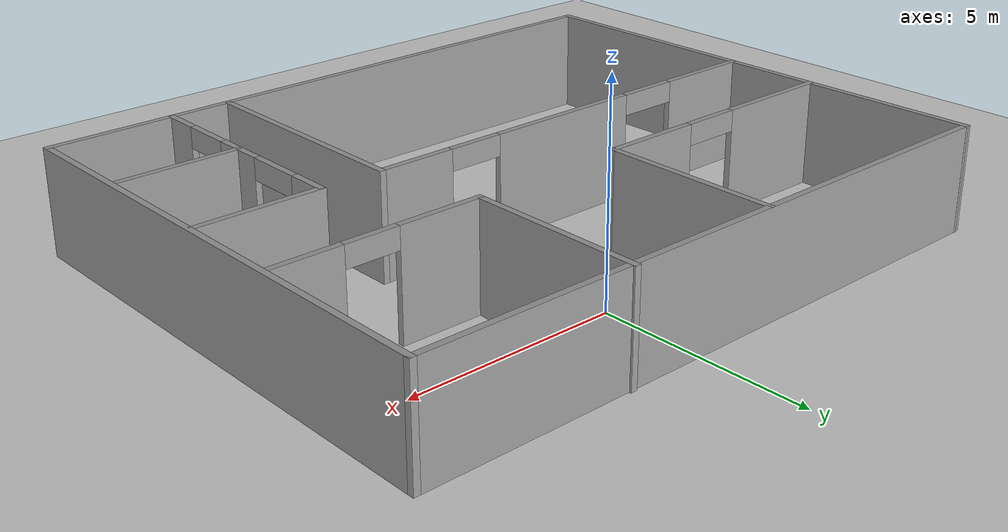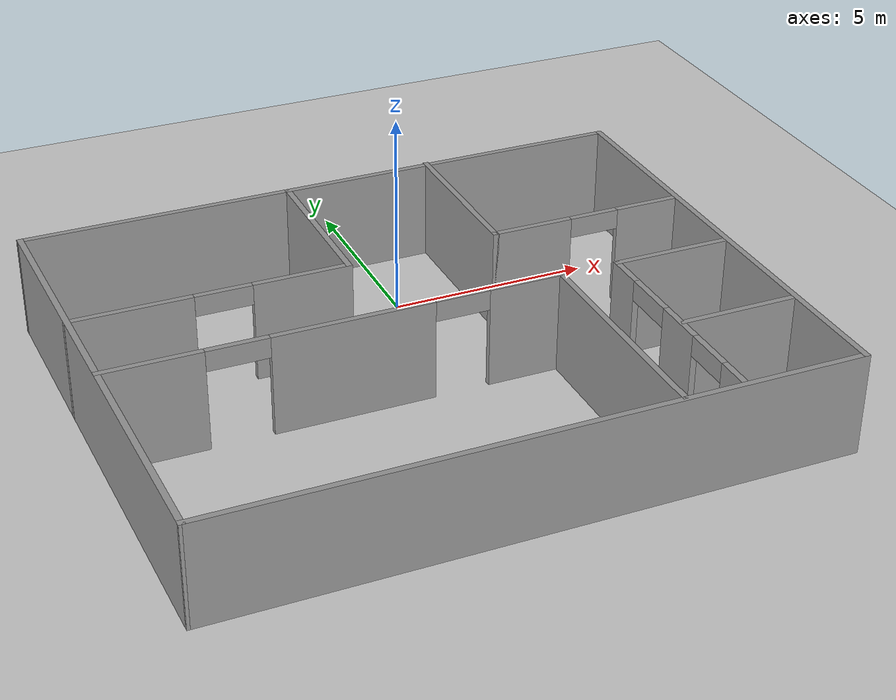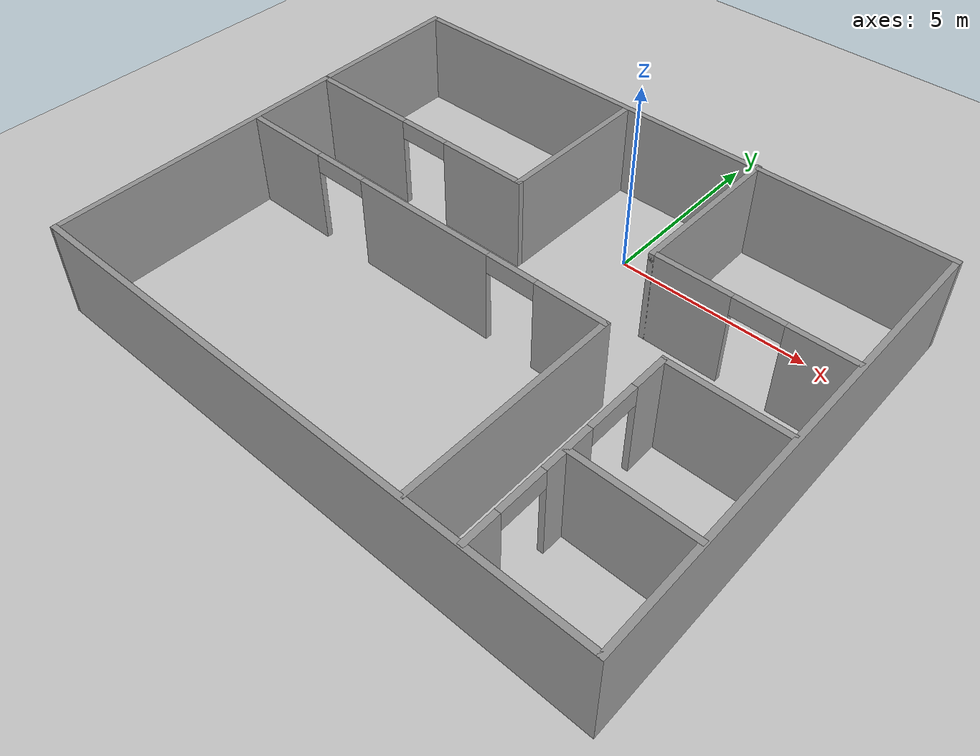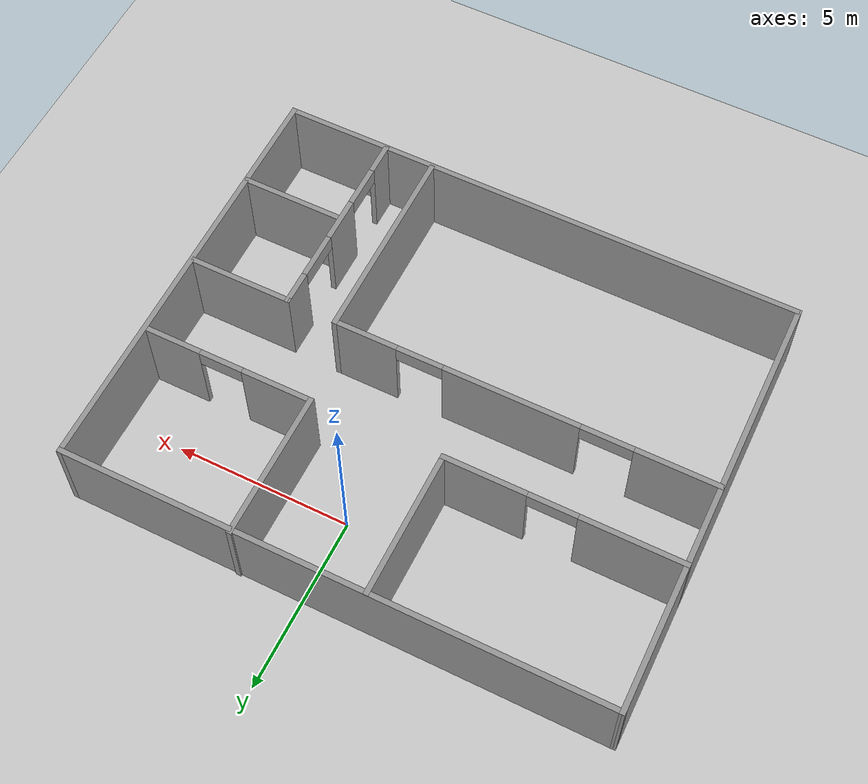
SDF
<sdf version="1.7">
 <world name="default">
  <light name="sun" type="directional">
   <cast_shadows>0</cast_shadows>
   <pose>0 0 10 0 -0 0</pose>
   <diffuse>0.8 0.8 0.8 1</diffuse>
   <specular>0.2 0.2 0.2 1</specular>
   <attenuation>
    <range>1000</range>
    <constant>0.9</constant>
    <linear>0.01</linear>
    <quadratic>0.001</quadratic>
   </attenuation>
   <direction>-0.5 0.1 -0.9</direction>
   <spot><inner_angle>0</inner_angle><outer_angle>0</outer_angle><falloff>0</falloff></spot>
  </light>
  <model name="ground_plane">
   <static>1</static>
   <link name="link">
    <collision name="collision">
     <geometry><plane><normal>0 0 1</normal><size>100 100</size></plane></geometry>
     <surface><friction><ode><mu>100</mu><mu2>50</mu2></ode></friction></surface>
    </collision>
    <visual name="visual">
     <cast_shadows>0</cast_shadows>
     <geometry><plane><normal>0 0 1</normal><size>100 100</size></plane></geometry>
     <material>
      <script><uri>file://media/materials/scripts/gazebo.material</uri><name>Gazebo/Grey</name></script>
     </material>
    </visual>
   </link>
  </model>
  <gravity>0 0 -9.8</gravity>
  <magnetic_field>6e-06 2.3e-05 -4.2e-05</magnetic_field>
  <atmosphere type="adiabatic"/>
  <physics type="ode">
   <max_step_size>0.001</max_step_size>
   <real_time_factor>1</real_time_factor>
   <real_time_update_rate>1000</real_time_update_rate>
  </physics>
  <scene><ambient>0.4 0.4 0.4 1</ambient><background>0.7 0.7 0.7 1</background><shadows>0</shadows></scene>
  <spherical_coordinates>
   <surface_model>EARTH_WGS84</surface_model>
   <latitude_deg>0</latitude_deg>
   <longitude_deg>0</longitude_deg>
   <elevation>0</elevation>
   <heading_deg>0</heading_deg>
  </spherical_coordinates>
  <model name="dtan_mems">
   <pose>-0.93596 -3.65632 0 0 -0 0</pose>
   <link name="Wall_10">
    <collision name="Wall_10_Collision">
     <geometry><box><size>12.2526 0.15 2.5</size></box></geometry>
     <pose>0 0 1.25 0 -0 0</pose>
    </collision>
    <visual name="Wall_10_Visual">
     <pose>0 0 1.25 0 -0 0</pose>
     <geometry><box><size>12.2526 0.15 2.5</size></box></geometry>
     <material>
      <script><uri>file://media/materials/scripts/gazebo.material</uri><name>Gazebo/Grey</name></script>
      <ambient>1 1 1 1</ambient>
     </material>
     <meta><layer>0</layer></meta>
    </visual>
    <pose>-7.54923 -0.022286 0 0 -0 -1.55014</pose>
   </link>
   <link name="Wall_12">
    <collision name="Wall_12_Collision">
     <geometry><box><size>4.25 0.15 2.5</size></box></geometry>
     <pose>0 0 1.25 0 -0 0</pose>
    </collision>
    <visual name="Wall_12_Visual">
     <pose>0 0 1.25 0 -0 0</pose>
     <geometry><box><size>4.25 0.15 2.5</size></box></geometry>
     <material>
      <script><uri>file://media/materials/scripts/gazebo.material</uri><name>Gazebo/Grey</name></script>
      <ambient>1 1 1 1</ambient>
     </material>
     <meta><layer>0</layer></meta>
    </visual>
    <pose>2.75418 4.02382 0 0 -0 -1.5708</pose>
   </link>
   <link name="Wall_15">
    <collision name="Wall_15_Collision">
     <geometry><box><size>4.25 0.15 2.5</size></box></geometry>
     <pose>0 0 1.25 0 -0 0</pose>
    </collision>
    <visual name="Wall_15_Visual">
     <pose>0 0 1.25 0 -0 0</pose>
     <geometry><box><size>4.25 0.15 2.5</size></box></geometry>
     <material>
      <script><uri>file://media/materials/scripts/gazebo.material</uri><name>Gazebo/Grey</name></script>
      <ambient>1 1 1 1</ambient>
     </material>
     <meta><layer>0</layer></meta>
    </visual>
    <pose>-0.990993 3.97032 0 0 -0 -1.5708</pose>
   </link>
   <link name="Wall_16">
    <pose>-4.29099 1.92032 0 0 -0 3.14159</pose>
    <visual name="Wall_16_Visual_0">
     <pose>-2.17293 0 1.25 0 -0 0</pose>
     <geometry><box><size>2.40415 0.15 2.5</size></box></geometry>
     <material>
      <script><uri>file://media/materials/scripts/gazebo.material</uri><name>Gazebo/Grey</name></script>
      <ambient>1 1 1 1</ambient>
     </material>
     <meta><layer>0</layer></meta>
    </visual>
    <collision name="Wall_16_Collision_0">
     <geometry><box><size>2.40415 0.15 2.5</size></box></geometry>
     <pose>-2.17293 0 1.25 0 -0 0</pose>
    </collision>
    <visual name="Wall_16_Visual_1">
     <pose>1.89344 0 1.25 0 -0 0</pose>
     <geometry><box><size>2.96313 0.15 2.5</size></box></geometry>
     <material>
      <script><uri>file://media/materials/scripts/gazebo.material</uri><name>Gazebo/Grey</name></script>
      <ambient>1 1 1 1</ambient>
     </material>
     <meta><layer>0</layer></meta>
    </visual>
    <collision name="Wall_16_Collision_1">
     <geometry><box><size>2.96313 0.15 2.5</size></box></geometry>
     <pose>1.89344 0 1.25 0 -0 0</pose>
    </collision>
    <visual name="Wall_16_Visual_2">
     <pose>-0.27949 0 2.25 0 -0 0</pose>
     <geometry><box><size>1.38273 0.15 0.5</size></box></geometry>
     <material>
      <script><uri>file://media/materials/scripts/gazebo.material</uri><name>Gazebo/Grey</name></script>
      <ambient>1 1 1 1</ambient>
     </material>
     <meta><layer>0</layer></meta>
    </visual>
    <collision name="Wall_16_Collision_2">
     <geometry><box><size>1.38273 0.15 0.5</size></box></geometry>
     <pose>-0.27949 0 2.25 0 -0 0</pose>
    </collision>
   </link>
   <link name="Wall_18">
    <pose>5.17918 1.97382 0 0 -0 0</pose>
    <visual name="Wall_18_Visual_0">
     <pose>-1.46527 0 1.25 0 -0 0</pose>
     <geometry><box><size>2.06946 0.15 2.5</size></box></geometry>
     <material>
      <script><uri>file://media/materials/scripts/gazebo.material</uri><name>Gazebo/Grey</name></script>
      <ambient>1 1 1 1</ambient>
     </material>
     <meta><layer>0</layer></meta>
    </visual>
    <collision name="Wall_18_Collision_0">
     <geometry><box><size>2.06946 0.15 2.5</size></box></geometry>
     <pose>-1.46527 0 1.25 0 -0 0</pose>
    </collision>
    <visual name="Wall_18_Visual_1">
     <pose>1.65963 0 1.25 0 -0 0</pose>
     <geometry><box><size>1.68074 0.15 2.5</size></box></geometry>
     <material>
      <script><uri>file://media/materials/scripts/gazebo.material</uri><name>Gazebo/Grey</name></script>
      <ambient>1 1 1 1</ambient>
     </material>
     <meta><layer>0</layer></meta>
    </visual>
    <collision name="Wall_18_Collision_1">
     <geometry><box><size>1.68074 0.15 2.5</size></box></geometry>
     <pose>1.65963 0 1.25 0 -0 0</pose>
    </collision>
    <visual name="Wall_18_Visual_2">
     <pose>0.194358 0 2.25 0 -0 0</pose>
     <geometry><box><size>1.2498 0.15 0.5</size></box></geometry>
     <material>
      <script><uri>file://media/materials/scripts/gazebo.material</uri><name>Gazebo/Grey</name></script>
      <ambient>1 1 1 1</ambient>
     </material>
     <meta><layer>0</layer></meta>
    </visual>
    <collision name="Wall_18_Collision_2">
     <geometry><box><size>1.2498 0.15 0.5</size></box></geometry>
     <pose>0.194358 0 2.25 0 -0 0</pose>
    </collision>
   </link>
   <link name="Wall_20">
    <pose>-2.11163 -0.401133 0 0 -0 0</pose>
    <visual name="Wall_20_Visual_0">
     <pose>-4.28921 0 1.25 0 -0 0</pose>
     <geometry><box><size>2.42157 0.15 2.5</size></box></geometry>
     <material>
      <script><uri>file://media/materials/scripts/gazebo.material</uri><name>Gazebo/Grey</name></script>
      <ambient>1 1 1 1</ambient>
     </material>
     <meta><layer>0</layer></meta>
    </visual>
    <collision name="Wall_20_Collision_0">
     <geometry><box><size>2.42157 0.15 2.5</size></box></geometry>
     <pose>-4.28921 0 1.25 0 -0 0</pose>
    </collision>
    <visual name="Wall_20_Visual_1">
     <pose>0.342195 0 1.25 0 -0 0</pose>
     <geometry><box><size>3.88538 0.15 2.5</size></box></geometry>
     <material>
      <script><uri>file://media/materials/scripts/gazebo.material</uri><name>Gazebo/Grey</name></script>
      <ambient>1 1 1 1</ambient>
     </material>
     <meta><layer>0</layer></meta>
    </visual>
    <collision name="Wall_20_Collision_1">
     <geometry><box><size>3.88538 0.15 2.5</size></box></geometry>
     <pose>0.342195 0 1.25 0 -0 0</pose>
    </collision>
    <visual name="Wall_20_Visual_2">
     <pose>4.55537 0 1.25 0 -0 0</pose>
     <geometry><box><size>1.88927 0.15 2.5</size></box></geometry>
     <material>
      <script><uri>file://media/materials/scripts/gazebo.material</uri><name>Gazebo/Grey</name></script>
      <ambient>1 1 1 1</ambient>
     </material>
     <meta><layer>0</layer></meta>
    </visual>
    <collision name="Wall_20_Collision_2">
     <geometry><box><size>1.88927 0.15 2.5</size></box></geometry>
     <pose>4.55537 0 1.25 0 -0 0</pose>
    </collision>
    <visual name="Wall_20_Visual_3">
     <pose>-2.33946 0 2.25 0 -0 0</pose>
     <geometry><box><size>1.47793 0.15 0.5</size></box></geometry>
     <material>
      <script><uri>file://media/materials/scripts/gazebo.material</uri><name>Gazebo/Grey</name></script>
      <ambient>1 1 1 1</ambient>
     </material>
     <meta><layer>0</layer></meta>
    </visual>
    <collision name="Wall_20_Collision_3">
     <geometry><box><size>1.47793 0.15 0.5</size></box></geometry>
     <pose>-2.33946 0 2.25 0 -0 0</pose>
    </collision>
    <visual name="Wall_20_Visual_4">
     <pose>2.94781 0 2.25 0 -0 0</pose>
     <geometry><box><size>1.32584 0.15 0.5</size></box></geometry>
     <material>
      <script><uri>file://media/materials/scripts/gazebo.material</uri><name>Gazebo/Grey</name></script>
      <ambient>1 1 1 1</ambient>
     </material>
     <meta><layer>0</layer></meta>
    </visual>
    <collision name="Wall_20_Collision_4">
     <geometry><box><size>1.32584 0.15 0.5</size></box></geometry>
     <pose>2.94781 0 2.25 0 -0 0</pose>
    </collision>
   </link>
   <link name="Wall_21">
    <collision name="Wall_21_Collision">
     <geometry><box><size>5.75 0.15 2.5</size></box></geometry>
     <pose>0 0 1.25 0 -0 0</pose>
    </collision>
    <visual name="Wall_21_Visual">
     <pose>0 0 1.25 0 -0 0</pose>
     <geometry><box><size>5.75 0.15 2.5</size></box></geometry>
     <material>
      <script><uri>file://media/materials/scripts/gazebo.material</uri><name>Gazebo/Grey</name></script>
      <ambient>1 1 1 1</ambient>
     </material>
     <meta><layer>0</layer></meta>
    </visual>
    <pose>3.31338 -3.20113 0 0 -0 -1.5708</pose>
   </link>
   <link name="Wall_23">
    <pose>4.74569 -3.23053 0 0 -0 1.5708</pose>
    <visual name="Wall_23_Visual_0">
     <pose>-2.41274 0 1.25 0 -0 0</pose>
     <geometry><box><size>0.924522 0.15 2.5</size></box></geometry>
     <material>
      <script><uri>file://media/materials/scripts/gazebo.material</uri><name>Gazebo/Grey</name></script>
      <ambient>1 1 1 1</ambient>
     </material>
     <meta><layer>0</layer></meta>
    </visual>
    <collision name="Wall_23_Collision_0">
     <geometry><box><size>0.924522 0.15 2.5</size></box></geometry>
     <pose>-2.41274 0 1.25 0 -0 0</pose>
    </collision>
    <visual name="Wall_23_Visual_1">
     <pose>-0.102407 0 1.25 0 -0 0</pose>
     <geometry><box><size>1.28434 0.15 2.5</size></box></geometry>
     <material>
      <script><uri>file://media/materials/scripts/gazebo.material</uri><name>Gazebo/Grey</name></script>
      <ambient>1 1 1 1</ambient>
     </material>
     <meta><layer>0</layer></meta>
    </visual>
    <collision name="Wall_23_Collision_1">
     <geometry><box><size>1.28434 0.15 2.5</size></box></geometry>
     <pose>-0.102407 0 1.25 0 -0 0</pose>
    </collision>
    <visual name="Wall_23_Visual_2">
     <pose>2.37863 0 1.25 0 -0 0</pose>
     <geometry><box><size>0.99274 0.15 2.5</size></box></geometry>
     <material>
      <script><uri>file://media/materials/scripts/gazebo.material</uri><name>Gazebo/Grey</name></script>
      <ambient>1 1 1 1</ambient>
     </material>
     <meta><layer>0</layer></meta>
    </visual>
    <collision name="Wall_23_Collision_2">
     <geometry><box><size>0.99274 0.15 2.5</size></box></geometry>
     <pose>2.37863 0 1.25 0 -0 0</pose>
    </collision>
    <visual name="Wall_23_Visual_3">
     <pose>-1.34753 0 2.25 0 -0 0</pose>
     <geometry><box><size>1.2059 0.15 0.5</size></box></geometry>
     <material>
      <script><uri>file://media/materials/scripts/gazebo.material</uri><name>Gazebo/Grey</name></script>
      <ambient>1 1 1 1</ambient>
     </material>
     <meta><layer>0</layer></meta>
    </visual>
    <collision name="Wall_23_Collision_3">
     <geometry><box><size>1.2059 0.15 0.5</size></box></geometry>
     <pose>-1.34753 0 2.25 0 -0 0</pose>
    </collision>
    <visual name="Wall_23_Visual_4">
     <pose>1.21101 0 2.25 0 -0 0</pose>
     <geometry><box><size>1.3425 0.15 0.5</size></box></geometry>
     <material>
      <script><uri>file://media/materials/scripts/gazebo.material</uri><name>Gazebo/Grey</name></script>
      <ambient>1 1 1 1</ambient>
     </material>
     <meta><layer>0</layer></meta>
    </visual>
    <collision name="Wall_23_Collision_4">
     <geometry><box><size>1.3425 0.15 0.5</size></box></geometry>
     <pose>1.21101 0 2.25 0 -0 0</pose>
    </collision>
   </link>
   <link name="Wall_24">
    <collision name="Wall_24_Collision">
     <geometry><box><size>3 0.15 2.5</size></box></geometry>
     <pose>0 0 1.25 0 -0 0</pose>
    </collision>
    <visual name="Wall_24_Visual">
     <pose>0 0 1.25 0 -0 0</pose>
     <geometry><box><size>3 0.15 2.5</size></box></geometry>
     <material>
      <script><uri>file://media/materials/scripts/gazebo.material</uri><name>Gazebo/Grey</name></script>
      <ambient>1 1 1 1</ambient>
     </material>
     <meta><layer>0</layer></meta>
    </visual>
    <pose>6.17069 -0.430527 0 0 -0 0</pose>
   </link>
   <link name="Wall_28">
    <collision name="Wall_28_Collision">
     <geometry><box><size>3 0.15 2.5</size></box></geometry>
     <pose>0 0 1.25 0 -0 0</pose>
    </collision>
    <visual name="Wall_28_Visual">
     <pose>0 0 1.25 0 -0 0</pose>
     <geometry><box><size>3 0.15 2.5</size></box></geometry>
     <material>
      <script><uri>file://media/materials/scripts/gazebo.material</uri><name>Gazebo/Grey</name></script>
      <ambient>1 1 1 1</ambient>
     </material>
     <meta><layer>0</layer></meta>
    </visual>
    <pose>6.21221 -3.37125 0 0 -0 0</pose>
   </link>
   <link name="Wall_7">
    <collision name="Wall_7_Collision">
     <geometry><box><size>15.25 0.15 2.5</size></box></geometry>
     <pose>0 0 1.25 0 -0 0</pose>
    </collision>
    <visual name="Wall_7_Visual">
     <pose>0 0 1.25 0 -0 0</pose>
     <geometry><box><size>15.25 0.15 2.5</size></box></geometry>
     <material>
      <script><uri>file://media/materials/scripts/gazebo.material</uri><name>Gazebo/Grey</name></script>
      <ambient>1 1 1 1</ambient>
     </material>
     <meta><layer>0</layer></meta>
    </visual>
    <pose>0.125766 -6.07229 0 0 -0 0</pose>
   </link>
   <link name="Wall_8">
    <collision name="Wall_8_Collision">
     <geometry><box><size>12.25 0.15 2.5</size></box></geometry>
     <pose>0 0 1.25 0 -0 0</pose>
    </collision>
    <visual name="Wall_8_Visual">
     <pose>0 0 1.25 0 -0 0</pose>
     <geometry><box><size>12.25 0.15 2.5</size></box></geometry>
     <material>
      <script><uri>file://media/materials/scripts/gazebo.material</uri><name>Gazebo/Grey</name></script>
      <ambient>1 1 1 1</ambient>
     </material>
     <meta><layer>0</layer></meta>
    </visual>
    <pose>7.67577 -0.022286 0 0 -0 1.5708</pose>
   </link>
   <link name="Wall_9">
    <collision name="Wall_9_Collision">
     <geometry><box><size>15.5 0.15 2.5</size></box></geometry>
     <pose>0 0 1.25 0 -0 0</pose>
    </collision>
    <visual name="Wall_9_Visual">
     <pose>0 0 1.25 0 -0 0</pose>
     <geometry><box><size>15.5 0.15 2.5</size></box></geometry>
     <material>
      <script><uri>file://media/materials/scripts/gazebo.material</uri><name>Gazebo/Grey</name></script>
      <ambient>1 1 1 1</ambient>
     </material>
     <meta><layer>0</layer></meta>
    </visual>
    <pose>0.000766 6.02771 0 0 -0 3.14159</pose>
   </link>
   <static>1</static>
  </model>
 </world>
</sdf>
